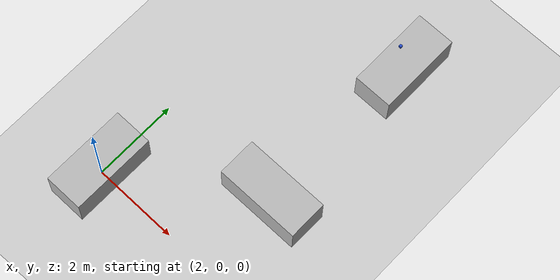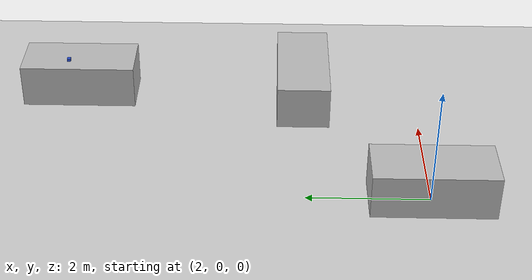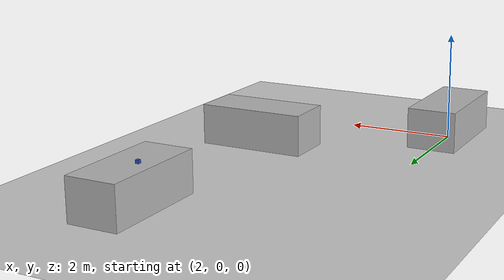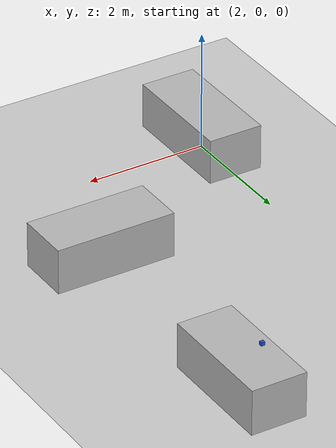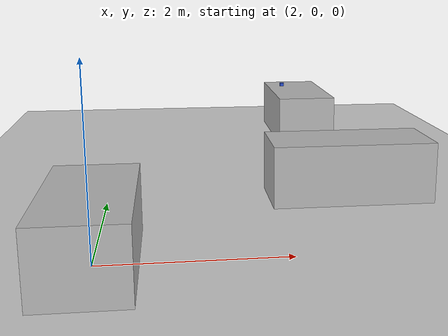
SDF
<sdf version="1.4">
 <world name="default">
  <include><uri>model://ground_plane</uri></include>
  <include><uri>model://sun</uri></include>
  <include><uri>model://table</uri><name>table1</name><pose>5.05 6 0 0 0 1.57</pose></include>
  <include><uri>model://table</uri><name>table2</name><pose>2 0 0 0 0 1.57</pose></include>
  <include><uri>model://table</uri><name>table3</name><pose>5 2 0 0 0 0</pose></include>
  <include><uri>model://demo_cube</uri><pose>4.8 6.15 0.83 0 0 0</pose></include>
 </world>
</sdf>

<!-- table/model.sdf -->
<sdf version="1.4">
  <model name="table">
    <static>true</static>
    <link name="link">
      <collision name="surface">
        <pose>0 0 0.3775 0 0 0</pose>
        <geometry>
          <box>
            <size>2 0.913 0.755</size>
          </box>
        </geometry>
      </collision>
      <visual name="visual">
        <pose>0 0 0.3775 0 0 0</pose>
        <geometry>
          <box>
            <size>2 0.913 0.755</size>
          </box>
        </geometry>
      </visual>
    </link>
  </model>
</sdf>

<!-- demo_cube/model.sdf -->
<sdf version='1.6'>
  <model name="demo_cube">
      <static>0</static>
      <link name='link'>
        <inertial>
          <mass>0.25</mass>
          <inertia>
            <ixx>0.001</ixx>
            <ixy>0.000000</ixy>
            <ixz>0.000000</ixz>
            <iyy>0.001</iyy>
            <iyz>0.000000</iyz>
            <izz>0.001</izz>
          </inertia>
        </inertial>
        <collision name='collision'>
          <geometry>
            <box>
              <size>0.060 0.060 0.060</size>
            </box>
          </geometry>
          <surface>
            <friction>
              <ode>
                <mu>30.0</mu>
                <mu2>30.0</mu2>
              </ode>
            </friction>
            <contact>
              <ode>
                <kp>1000000.0</kp>
                <kd>100.0</kd>
                <max_vel>1.0</max_vel>
                <min_depth>0.002</min_depth>
              </ode>
            </contact>
          </surface>
        </collision>
        <visual name='visual'>
          <geometry>
            <box>
              <size>0.060 0.060 0.060</size>
            </box>
          </geometry>
          <material>
            <script>
              <uri>file://media/materials/scripts/gazebo.material</uri>
              <name>Gazebo/Blue</name>
            </script>
          </material>
        </visual>
        <velocity_decay>
          <linear>0.000000</linear>
          <angular>0.000000</angular>
        </velocity_decay>
        <self_collide>0</self_collide>
        <kinematic>0</kinematic>
        <gravity>1</gravity>
      </link>
  </model>
</sdf>
